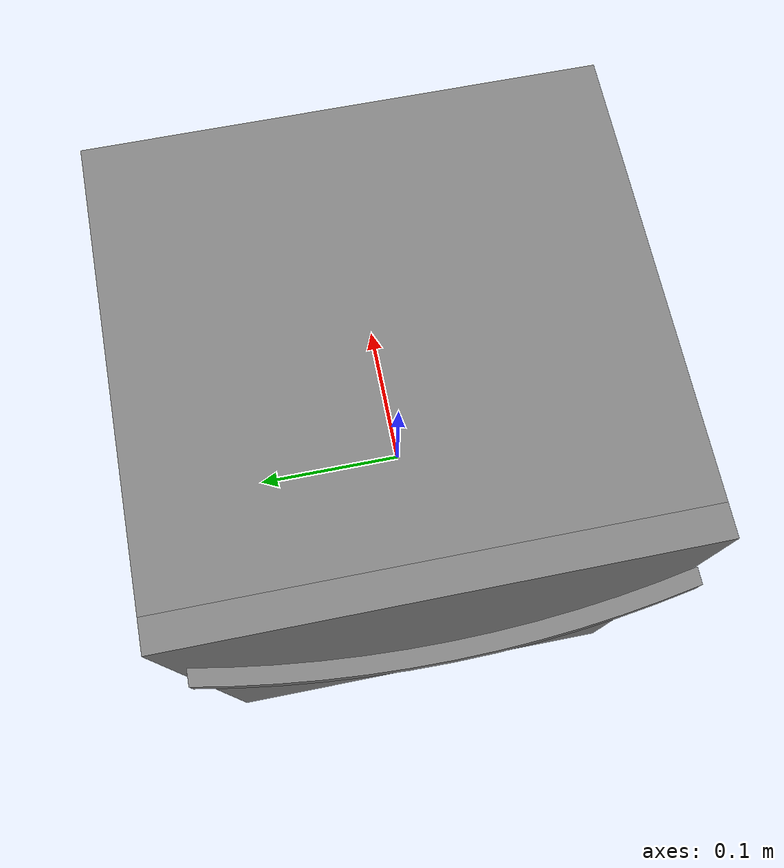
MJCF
<mujoco model="partnet_c6090fb2806b2abfa5f4a1f264741b67">
    <compiler angle="radian" />
    <size njmax="500" nconmax="100" />
    <asset>
        <mesh name="new-2" file="new-2.stl" scale="0.3 0.3 0.3" />
        <mesh name="new-0" file="new-0.stl" scale="0.3 0.3 0.3" />
        <mesh name="new-1" file="new-1.stl" scale="0.3 0.3 0.3" />
        <mesh name="original-2" file="original-2.stl" scale="0.3 0.3 0.3" />
    </asset>
    <worldbody>
    <body>
        <body name="object">
        <geom quat="0.5 0.5 -0.5 -0.5" type="mesh" group="0" mesh="new-2" contype="0" conaffinity="0" />
        <geom quat="0.5 0.5 -0.5 -0.5" type="mesh" group="0" mesh="new-0" contype="0" conaffinity="0" />
        <body name="link_0" pos="-0.1163589 -0.1453476 -0.1696491" quat="0.5 0.5 -0.5 -0.5" gravcomp="1">
            <inertial pos="-0.1500537 0.1944024 0.011598059999999999" quat="0.497788 0.502202 -0.502202 0.497788" mass="83.3471" diaginertia="18.4419 11.572 6.96006" />
            <joint name="joint_0" pos="0.0 0.0 0.0" axis="1 0 0" limited="true" range="0 1.5708" />
            <geom pos="-0.1453476 0.1696491 -0.1163589" type="mesh" group="0" mesh="new-1" />
            <geom pos="-0.1453476 0.1696491 -0.1163589" type="mesh" group="0" mesh="original-2" />
        </body>
     </body>
        <site name="bottom_site" pos="0 0 -0.3" rgba="0 0 0 0" size="0.005" />
        <site name="top_site" pos="0 0 0.3" rgba="0 0 0 0" size="0.005" />
        <site name="horizontal_radius_site" pos="0.3 0 0" rgba="0 0 0 0" size="0.1" />
    </body>
    </worldbody>
</mujoco>
